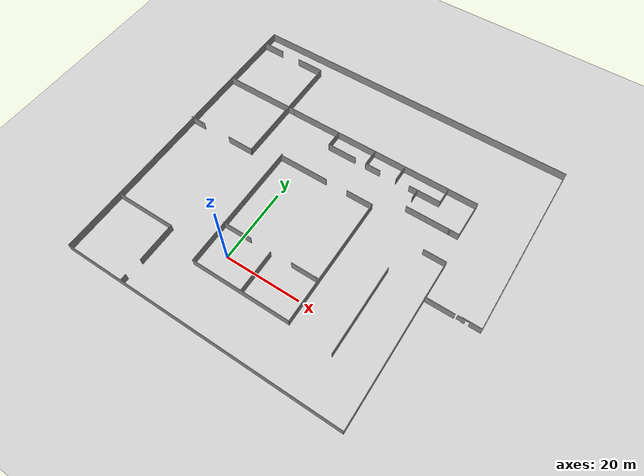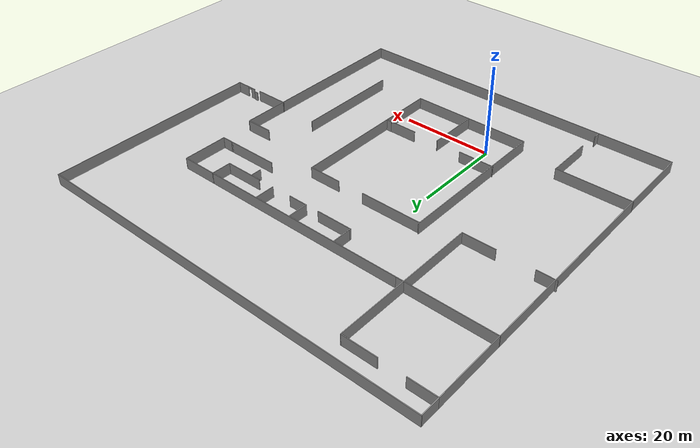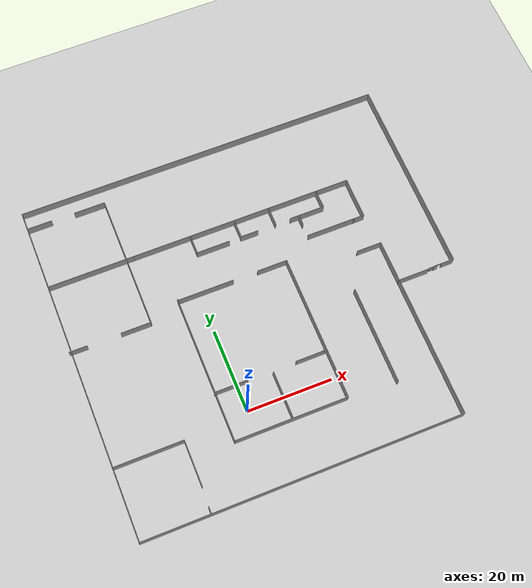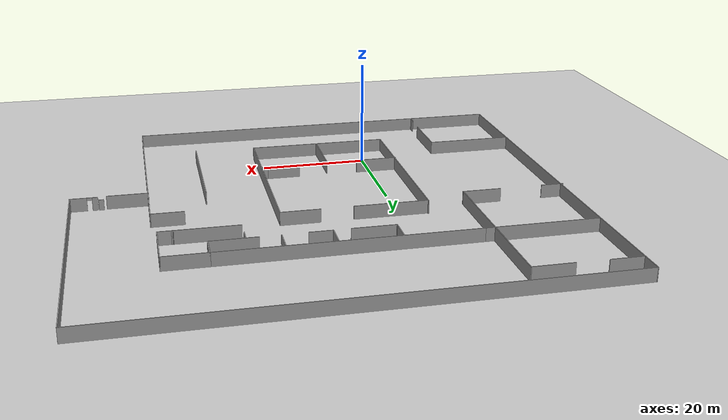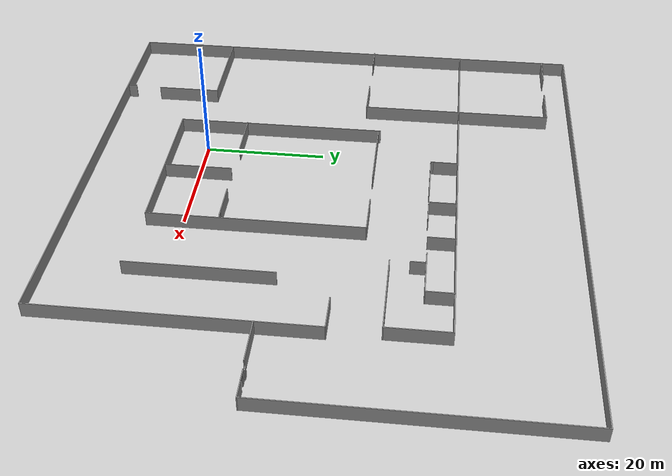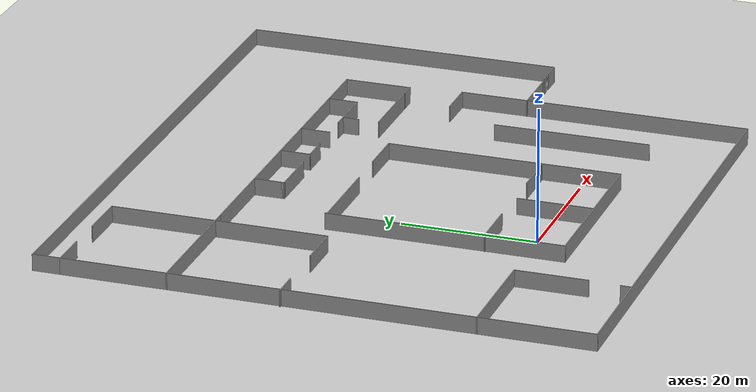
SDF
<sdf version="1.6">
 <world name="default">
  <light name="sun" type="directional">
   <pose>0 0 10 0 -0 0</pose>
   <diffuse>0.8 0.8 0.8 1</diffuse>
   <specular>0.2 0.2 0.2 1</specular>
   <attenuation>
    <range>1000</range>
    <constant>0.9</constant>
    <linear>0.01</linear>
    <quadratic>0.001</quadratic>
   </attenuation>
   <direction>-0.5 0.1 -0.9</direction>
  </light>
  <model name="ground_plane">
   <static>1</static>
   <link name="link">
    <collision name="collision">
     <geometry><plane><normal>0 0 1</normal><size>100 100</size></plane></geometry>
     <surface><friction><ode><mu>100</mu><mu2>50</mu2></ode></friction></surface>
    </collision>
    <visual name="visual">
     <cast_shadows>0</cast_shadows>
     <geometry><plane><normal>0 0 1</normal><size>100 100</size></plane></geometry>
     <material>
      <script><uri>file://media/materials/scripts/gazebo.material</uri><name>Gazebo/Grey</name></script>
     </material>
    </visual>
   </link>
  </model>
  <gravity>0 0 -9.8</gravity>
  <magnetic_field>6e-06 2.3e-05 -4.2e-05</magnetic_field>
  <atmosphere type="adiabatic"/>
  <physics name="default_physics" default="0" type="ode">
   <max_step_size>0.001</max_step_size>
   <real_time_factor>1</real_time_factor>
   <real_time_update_rate>1000</real_time_update_rate>
  </physics>
  <scene><ambient>0.4 0.4 0.4 1</ambient><background>0.7 0.7 0.7 1</background><shadows>1</shadows></scene>
  <spherical_coordinates>
   <surface_model>EARTH_WGS84</surface_model>
   <latitude_deg>0</latitude_deg>
   <longitude_deg>0</longitude_deg>
   <elevation>0</elevation>
   <heading_deg>0</heading_deg>
  </spherical_coordinates>
  <model name="factory">
   <pose>12.5619 22.2595 0 0 -0 0</pose>
   <link name="Door_1">
    <collision name="Door_1_Collision">
     <geometry><box><size>0.9 0.17 2</size></box></geometry>
     <pose>0 0 1 0 -0 0</pose>
    </collision>
    <visual name="Door_1_Visual">
     <pose>0 0 1 0 -0 0</pose>
     <geometry><box><size>0.9 0.17 2</size></box></geometry>
     <material>
      <script><uri>file://media/materials/scripts/gazebo.material</uri><name>Gazebo/Grey</name></script>
     </material>
    </visual>
    <pose>39.0036 -6.7146 0 0 -0 0</pose>
   </link>
   <link name="Wall_115">
    <collision name="Wall_115_Collision">
     <geometry><box><size>11.25 0.15 2.5</size></box></geometry>
     <pose>0 0 1.25 0 -0 0</pose>
    </collision>
    <visual name="Wall_115_Visual">
     <pose>0 0 1.25 0 -0 0</pose>
     <geometry><box><size>11.25 0.15 2.5</size></box></geometry>
     <material>
      <script><uri>file://media/materials/scripts/gazebo.material</uri><name>Gazebo/Grey</name></script>
      <ambient>1 1 1 1</ambient>
     </material>
     <meta><layer>0</layer></meta>
    </visual>
    <pose>-4.18518 -22.1969 0 0 -0 1.5708</pose>
   </link>
   <link name="Wall_117">
    <collision name="Wall_117_Collision">
     <geometry><box><size>1.25 0.15 2.5</size></box></geometry>
     <pose>0 0 1.25 0 -0 0</pose>
    </collision>
    <visual name="Wall_117_Visual">
     <pose>0 0 1.25 0 -0 0</pose>
     <geometry><box><size>1.25 0.15 2.5</size></box></geometry>
     <material>
      <script><uri>file://media/materials/scripts/gazebo.material</uri><name>Gazebo/Grey</name></script>
      <ambient>1 1 1 1</ambient>
     </material>
     <meta><layer>0</layer></meta>
    </visual>
    <pose>8.17817 -16.1796 0 0 -0 0</pose>
   </link>
   <link name="Wall_119">
    <collision name="Wall_119_Collision">
     <geometry><box><size>23.5 0.15 2.5</size></box></geometry>
     <pose>0 0 1.25 0 -0 0</pose>
    </collision>
    <visual name="Wall_119_Visual">
     <pose>0 0 1.25 0 -0 0</pose>
     <geometry><box><size>23.5 0.15 2.5</size></box></geometry>
     <material>
      <script><uri>file://media/materials/scripts/gazebo.material</uri><name>Gazebo/Grey</name></script>
      <ambient>1 1 1 1</ambient>
     </material>
     <meta><layer>0</layer></meta>
    </visual>
    <pose>20.426 -17.0257 0 0 -0 -1.5708</pose>
   </link>
   <link name="Wall_121">
    <collision name="Wall_121_Collision">
     <geometry><box><size>1.5 0.15 2.5</size></box></geometry>
     <pose>0 0 1.25 0 -0 0</pose>
    </collision>
    <visual name="Wall_121_Visual">
     <pose>0 0 1.25 0 -0 0</pose>
     <geometry><box><size>1.5 0.15 2.5</size></box></geometry>
     <material>
      <script><uri>file://media/materials/scripts/gazebo.material</uri><name>Gazebo/Grey</name></script>
      <ambient>1 1 1 1</ambient>
     </material>
     <meta><layer>0</layer></meta>
    </visual>
    <pose>-28.058 -39.6236 0 0 -0 1.5708</pose>
   </link>
   <link name="Wall_124">
    <collision name="Wall_124_Collision">
     <geometry><box><size>32.25 0.15 2.5</size></box></geometry>
     <pose>0 0 1.25 0 -0 0</pose>
    </collision>
    <visual name="Wall_124_Visual">
     <pose>0 0 1.25 0 -0 0</pose>
     <geometry><box><size>32.25 0.15 2.5</size></box></geometry>
     <material>
      <script><uri>file://media/materials/scripts/gazebo.material</uri><name>Gazebo/Grey</name></script>
      <ambient>1 1 1 1</ambient>
     </material>
     <meta><layer>0</layer></meta>
    </visual>
    <pose>-25.2313 20.2843 0 0 -0 -1.5708</pose>
   </link>
   <link name="Wall_125">
    <collision name="Wall_125_Collision">
     <geometry><box><size>7.25 0.15 2.5</size></box></geometry>
     <pose>0 0 1.25 0 -0 0</pose>
    </collision>
    <visual name="Wall_125_Visual">
     <pose>0 0 1.25 0 -0 0</pose>
     <geometry><box><size>7.25 0.15 2.5</size></box></geometry>
     <material>
      <script><uri>file://media/materials/scripts/gazebo.material</uri><name>Gazebo/Grey</name></script>
      <ambient>1 1 1 1</ambient>
     </material>
     <meta><layer>0</layer></meta>
    </visual>
    <pose>-28.7813 4.23431 0 0 -0 3.14159</pose>
   </link>
   <link name="Wall_127">
    <collision name="Wall_127_Collision">
     <geometry><box><size>4.25 0.15 2.5</size></box></geometry>
     <pose>0 0 1.25 0 -0 0</pose>
    </collision>
    <visual name="Wall_127_Visual">
     <pose>0 0 1.25 0 -0 0</pose>
     <geometry><box><size>4.25 0.15 2.5</size></box></geometry>
     <material>
      <script><uri>file://media/materials/scripts/gazebo.material</uri><name>Gazebo/Grey</name></script>
      <ambient>1 1 1 1</ambient>
     </material>
     <meta><layer>0</layer></meta>
    </visual>
    <pose>-42.4422 4.23281 0 0 -0 0</pose>
   </link>
   <link name="Wall_131">
    <collision name="Wall_131_Collision">
     <geometry><box><size>15.75 0.15 2.5</size></box></geometry>
     <pose>0 0 1.25 0 -0 0</pose>
    </collision>
    <visual name="Wall_131_Visual">
     <pose>0 0 1.25 0 -0 0</pose>
     <geometry><box><size>15.75 0.15 2.5</size></box></geometry>
     <material>
      <script><uri>file://media/materials/scripts/gazebo.material</uri><name>Gazebo/Grey</name></script>
      <ambient>1 1 1 1</ambient>
     </material>
     <meta><layer>0</layer></meta>
    </visual>
    <pose>-44.1078 28.625 0 0 -0 1.5708</pose>
   </link>
   <link name="Wall_132">
    <collision name="Wall_132_Collision">
     <geometry><box><size>6 0.15 2.5</size></box></geometry>
     <pose>0 0 1.25 0 -0 0</pose>
    </collision>
    <visual name="Wall_132_Visual">
     <pose>0 0 1.25 0 -0 0</pose>
     <geometry><box><size>6 0.15 2.5</size></box></geometry>
     <material>
      <script><uri>file://media/materials/scripts/gazebo.material</uri><name>Gazebo/Grey</name></script>
      <ambient>1 1 1 1</ambient>
     </material>
     <meta><layer>0</layer></meta>
    </visual>
    <pose>-41.1828 36.425 0 0 -0 0</pose>
   </link>
   <link name="Wall_134">
    <collision name="Wall_134_Collision">
     <geometry><box><size>7.5 0.15 2.5</size></box></geometry>
     <pose>0 0 1.25 0 -0 0</pose>
    </collision>
    <visual name="Wall_134_Visual">
     <pose>0 0 1.25 0 -0 0</pose>
     <geometry><box><size>7.5 0.15 2.5</size></box></geometry>
     <material>
      <script><uri>file://media/materials/scripts/gazebo.material</uri><name>Gazebo/Grey</name></script>
      <ambient>1 1 1 1</ambient>
     </material>
     <meta><layer>0</layer></meta>
    </visual>
    <pose>-28.9063 36.3343 0 0 -0 3.14159</pose>
   </link>
   <link name="Wall_136">
    <collision name="Wall_136_Collision">
     <geometry><box><size>4.25 0.15 2.5</size></box></geometry>
     <pose>0 0 1.25 0 -0 0</pose>
    </collision>
    <visual name="Wall_136_Visual">
     <pose>0 0 1.25 0 -0 0</pose>
     <geometry><box><size>4.25 0.15 2.5</size></box></geometry>
     <material>
      <script><uri>file://media/materials/scripts/gazebo.material</uri><name>Gazebo/Grey</name></script>
      <ambient>1 1 1 1</ambient>
     </material>
     <meta><layer>0</layer></meta>
    </visual>
    <pose>-44.1078 38.475 0 0 -0 1.5708</pose>
   </link>
   <link name="Wall_137">
    <collision name="Wall_137_Collision">
     <geometry><box><size>88.75 0.15 2.5</size></box></geometry>
     <pose>0 0 1.25 0 -0 0</pose>
    </collision>
    <visual name="Wall_137_Visual">
     <pose>0 0 1.25 0 -0 0</pose>
     <geometry><box><size>88.75 0.15 2.5</size></box></geometry>
     <material>
      <script><uri>file://media/materials/scripts/gazebo.material</uri><name>Gazebo/Grey</name></script>
      <ambient>1 1 1 1</ambient>
     </material>
     <meta><layer>0</layer></meta>
    </visual>
    <pose>0.192186 40.525 0 0 -0 0</pose>
   </link>
   <link name="Wall_138">
    <collision name="Wall_138_Collision">
     <geometry><box><size>47.5 0.15 2.5</size></box></geometry>
     <pose>0 0 1.25 0 -0 0</pose>
    </collision>
    <visual name="Wall_138_Visual">
     <pose>0 0 1.25 0 -0 0</pose>
     <geometry><box><size>47.5 0.15 2.5</size></box></geometry>
     <material>
      <script><uri>file://media/materials/scripts/gazebo.material</uri><name>Gazebo/Grey</name></script>
      <ambient>1 1 1 1</ambient>
     </material>
     <meta><layer>0</layer></meta>
    </visual>
    <pose>44.4922 16.85 0 0 -0 -1.5708</pose>
   </link>
   <link name="Wall_139">
    <pose>42.0672 -6.825 0 0 -0 3.14159</pose>
    <visual name="Wall_139_Visual_0">
     <pose>-0.960975 0 1.25 0 -0 0</pose>
     <geometry><box><size>3.07805 0.15 2.5</size></box></geometry>
     <material>
      <script><uri>file://media/materials/scripts/gazebo.material</uri><name>Gazebo/Grey</name></script>
      <ambient>1 1 1 1</ambient>
     </material>
     <meta><layer>0</layer></meta>
    </visual>
    <collision name="Wall_139_Collision_0">
     <geometry><box><size>3.07805 0.15 2.5</size></box></geometry>
     <pose>-0.960975 0 1.25 0 -0 0</pose>
    </collision>
    <visual name="Wall_139_Visual_1">
     <pose>1.98903 0 1.25 0 -0 0</pose>
     <geometry><box><size>1.02195 0.15 2.5</size></box></geometry>
     <material>
      <script><uri>file://media/materials/scripts/gazebo.material</uri><name>Gazebo/Grey</name></script>
      <ambient>1 1 1 1</ambient>
     </material>
     <meta><layer>0</layer></meta>
    </visual>
    <collision name="Wall_139_Collision_1">
     <geometry><box><size>1.02195 0.15 2.5</size></box></geometry>
     <pose>1.98903 0 1.25 0 -0 0</pose>
    </collision>
    <visual name="Wall_139_Visual_2">
     <pose>1.02805 0 2.25 0 -0 0</pose>
     <geometry><box><size>0.9 0.15 0.5</size></box></geometry>
     <material>
      <script><uri>file://media/materials/scripts/gazebo.material</uri><name>Gazebo/Grey</name></script>
      <ambient>1 1 1 1</ambient>
     </material>
     <meta><layer>0</layer></meta>
    </visual>
    <collision name="Wall_139_Collision_2">
     <geometry><box><size>0.9 0.15 0.5</size></box></geometry>
     <pose>1.02805 0 2.25 0 -0 0</pose>
    </collision>
   </link>
   <link name="Wall_141">
    <collision name="Wall_141_Collision">
     <geometry><box><size>7.5 0.15 2.5</size></box></geometry>
     <pose>0 0 1.25 0 -0 0</pose>
    </collision>
    <visual name="Wall_141_Visual">
     <pose>0 0 1.25 0 -0 0</pose>
     <geometry><box><size>7.5 0.15 2.5</size></box></geometry>
     <material>
      <script><uri>file://media/materials/scripts/gazebo.material</uri><name>Gazebo/Grey</name></script>
      <ambient>1 1 1 1</ambient>
     </material>
     <meta><layer>0</layer></meta>
    </visual>
    <pose>34.3559 -6.98725 0 0 -0 3.14159</pose>
   </link>
   <link name="Wall_28">
    <collision name="Wall_28_Collision">
     <geometry><box><size>8 0.15 2.5</size></box></geometry>
     <pose>0 0 1.25 0 -0 0</pose>
    </collision>
    <visual name="Wall_28_Visual">
     <pose>0 0 1.25 0 -0 0</pose>
     <geometry><box><size>8 0.15 2.5</size></box></geometry>
     <material>
      <script><uri>file://media/materials/scripts/gazebo.material</uri><name>Gazebo/Grey</name></script>
      <ambient>1 1 1 1</ambient>
     </material>
     <meta><layer>0</layer></meta>
    </visual>
    <pose>26.0172 20.825 0 0 -0 0</pose>
   </link>
   <link name="Wall_29">
    <collision name="Wall_29_Collision">
     <geometry><box><size>10 0.15 2.5</size></box></geometry>
     <pose>0 0 1.25 0 -0 0</pose>
    </collision>
    <visual name="Wall_29_Visual">
     <pose>0 0 1.25 0 -0 0</pose>
     <geometry><box><size>10 0.15 2.5</size></box></geometry>
     <material>
      <script><uri>file://media/materials/scripts/gazebo.material</uri><name>Gazebo/Grey</name></script>
      <ambient>1 1 1 1</ambient>
     </material>
     <meta><layer>0</layer></meta>
    </visual>
    <pose>29.9422 15.9 0 0 -0 -1.5708</pose>
   </link>
   <link name="Wall_30">
    <collision name="Wall_30_Collision">
     <geometry><box><size>2.5 0.15 2.5</size></box></geometry>
     <pose>0 0 1.25 0 -0 0</pose>
    </collision>
    <visual name="Wall_30_Visual">
     <pose>0 0 1.25 0 -0 0</pose>
     <geometry><box><size>2.5 0.15 2.5</size></box></geometry>
     <material>
      <script><uri>file://media/materials/scripts/gazebo.material</uri><name>Gazebo/Grey</name></script>
      <ambient>1 1 1 1</ambient>
     </material>
     <meta><layer>0</layer></meta>
    </visual>
    <pose>28.7672 10.975 0 0 -0 3.14159</pose>
   </link>
   <link name="Wall_33">
    <collision name="Wall_33_Collision">
     <geometry><box><size>4.5 0.15 2.5</size></box></geometry>
     <pose>0 0 1.25 0 -0 0</pose>
    </collision>
    <visual name="Wall_33_Visual">
     <pose>0 0 1.25 0 -0 0</pose>
     <geometry><box><size>4.5 0.15 2.5</size></box></geometry>
     <material>
      <script><uri>file://media/materials/scripts/gazebo.material</uri><name>Gazebo/Grey</name></script>
      <ambient>1 1 1 1</ambient>
     </material>
     <meta><layer>0</layer></meta>
    </visual>
    <pose>22.0922 18.65 0 0 -0 -1.5708</pose>
   </link>
   <link name="Wall_36">
    <collision name="Wall_36_Collision">
     <geometry><box><size>45.75 0.15 2.5</size></box></geometry>
     <pose>0 0 1.25 0 -0 0</pose>
    </collision>
    <visual name="Wall_36_Visual">
     <pose>0 0 1.25 0 -0 0</pose>
     <geometry><box><size>45.75 0.15 2.5</size></box></geometry>
     <material>
      <script><uri>file://media/materials/scripts/gazebo.material</uri><name>Gazebo/Grey</name></script>
      <ambient>1 1 1 1</ambient>
     </material>
     <meta><layer>0</layer></meta>
    </visual>
    <pose>-0.707813 20.825 0 0 -0 3.14159</pose>
   </link>
   <link name="Wall_37">
    <collision name="Wall_37_Collision">
     <geometry><box><size>20.75 0.15 2.5</size></box></geometry>
     <pose>0 0 1.25 0 -0 0</pose>
    </collision>
    <visual name="Wall_37_Visual">
     <pose>0 0 1.25 0 -0 0</pose>
     <geometry><box><size>20.75 0.15 2.5</size></box></geometry>
     <material>
      <script><uri>file://media/materials/scripts/gazebo.material</uri><name>Gazebo/Grey</name></script>
      <ambient>1 1 1 1</ambient>
     </material>
     <meta><layer>0</layer></meta>
    </visual>
    <pose>-33.8078 20.825 0 0 -0 3.14159</pose>
   </link>
   <link name="Wall_38">
    <collision name="Wall_38_Collision">
     <geometry><box><size>61.5 0.15 2.5</size></box></geometry>
     <pose>0 0 1.25 0 -0 0</pose>
    </collision>
    <visual name="Wall_38_Visual">
     <pose>0 0 1.25 0 -0 0</pose>
     <geometry><box><size>61.5 0.15 2.5</size></box></geometry>
     <material>
      <script><uri>file://media/materials/scripts/gazebo.material</uri><name>Gazebo/Grey</name></script>
      <ambient>1 1 1 1</ambient>
     </material>
     <meta><layer>0</layer></meta>
    </visual>
    <pose>-44.1078 -9.85 0 0 -0 -1.5708</pose>
   </link>
   <link name="Wall_39">
    <collision name="Wall_39_Collision">
     <geometry><box><size>75 0.15 2.5</size></box></geometry>
     <pose>0 0 1.25 0 -0 0</pose>
    </collision>
    <visual name="Wall_39_Visual">
     <pose>0 0 1.25 0 -0 0</pose>
     <geometry><box><size>75 0.15 2.5</size></box></geometry>
     <material>
      <script><uri>file://media/materials/scripts/gazebo.material</uri><name>Gazebo/Grey</name></script>
      <ambient>1 1 1 1</ambient>
     </material>
     <meta><layer>0</layer></meta>
    </visual>
    <pose>-6.68281 -40.525 0 0 -0 0</pose>
   </link>
   <link name="Wall_40">
    <collision name="Wall_40_Collision">
     <geometry><box><size>43.75 0.15 2.5</size></box></geometry>
     <pose>0 0 1.25 0 -0 0</pose>
    </collision>
    <visual name="Wall_40_Visual">
     <pose>0 0 1.25 0 -0 0</pose>
     <geometry><box><size>43.75 0.15 2.5</size></box></geometry>
     <material>
      <script><uri>file://media/materials/scripts/gazebo.material</uri><name>Gazebo/Grey</name></script>
      <ambient>1 1 1 1</ambient>
     </material>
     <meta><layer>0</layer></meta>
    </visual>
    <pose>30.7422 -18.725 0 0 -0 1.5708</pose>
   </link>
   <link name="Wall_41">
    <collision name="Wall_41_Collision">
     <geometry><box><size>6 0.15 2.5</size></box></geometry>
     <pose>0 0 1.25 0 -0 0</pose>
    </collision>
    <visual name="Wall_41_Visual">
     <pose>0 0 1.25 0 -0 0</pose>
     <geometry><box><size>6 0.15 2.5</size></box></geometry>
     <material>
      <script><uri>file://media/materials/scripts/gazebo.material</uri><name>Gazebo/Grey</name></script>
      <ambient>1 1 1 1</ambient>
     </material>
     <meta><layer>0</layer></meta>
    </visual>
    <pose>27.8172 3.075 0 0 -0 3.14159</pose>
   </link>
   <link name="Wall_43">
    <collision name="Wall_43_Collision">
     <geometry><box><size>8.5 0.15 2.5</size></box></geometry>
     <pose>0 0 1.25 0 -0 0</pose>
    </collision>
    <visual name="Wall_43_Visual">
     <pose>0 0 1.25 0 -0 0</pose>
     <geometry><box><size>8.5 0.15 2.5</size></box></geometry>
     <material>
      <script><uri>file://media/materials/scripts/gazebo.material</uri><name>Gazebo/Grey</name></script>
      <ambient>1 1 1 1</ambient>
     </material>
     <meta><layer>0</layer></meta>
    </visual>
    <pose>17.9172 16.475 0 0 -0 3.14159</pose>
   </link>
   <link name="Wall_46">
    <collision name="Wall_46_Collision">
     <geometry><box><size>11.5 0.15 2.5</size></box></geometry>
     <pose>0 0 1.25 0 -0 0</pose>
    </collision>
    <visual name="Wall_46_Visual">
     <pose>0 0 1.25 0 -0 0</pose>
     <geometry><box><size>11.5 0.15 2.5</size></box></geometry>
     <material>
      <script><uri>file://media/materials/scripts/gazebo.material</uri><name>Gazebo/Grey</name></script>
      <ambient>1 1 1 1</ambient>
     </material>
     <meta><layer>0</layer></meta>
    </visual>
    <pose>21.6221 10.9804 0 0 -0 3.14159</pose>
   </link>
   <link name="Wall_50">
    <collision name="Wall_50_Collision">
     <geometry><box><size>0.445165 0.15 2.5</size></box></geometry>
     <pose>0 0 1.25 0 -0 0</pose>
    </collision>
    <visual name="Wall_50_Visual">
     <pose>0 0 1.25 0 -0 0</pose>
     <geometry><box><size>0.445165 0.15 2.5</size></box></geometry>
     <material>
      <script><uri>file://media/materials/scripts/gazebo.material</uri><name>Gazebo/Grey</name></script>
      <ambient>1 1 1 1</ambient>
     </material>
     <meta><layer>0</layer></meta>
    </visual>
    <pose>27.4446 10.9777 0 0 -0 -0.018359</pose>
   </link>
   <link name="Wall_52">
    <collision name="Wall_52_Collision">
     <geometry><box><size>2.5 0.15 2.5</size></box></geometry>
     <pose>0 0 1.25 0 -0 0</pose>
    </collision>
    <visual name="Wall_52_Visual">
     <pose>0 0 1.25 0 -0 0</pose>
     <geometry><box><size>2.5 0.15 2.5</size></box></geometry>
     <material>
      <script><uri>file://media/materials/scripts/gazebo.material</uri><name>Gazebo/Grey</name></script>
      <ambient>1 1 1 1</ambient>
     </material>
     <meta><layer>0</layer></meta>
    </visual>
    <pose>15.8921 15.2787 0 0 -0 -1.5708</pose>
   </link>
   <link name="Wall_55">
    <collision name="Wall_55_Collision">
     <geometry><box><size>4.5 0.15 2.5</size></box></geometry>
     <pose>0 0 1.25 0 -0 0</pose>
    </collision>
    <visual name="Wall_55_Visual">
     <pose>0 0 1.25 0 -0 0</pose>
     <geometry><box><size>4.5 0.15 2.5</size></box></geometry>
     <material>
      <script><uri>file://media/materials/scripts/gazebo.material</uri><name>Gazebo/Grey</name></script>
      <ambient>1 1 1 1</ambient>
     </material>
     <meta><layer>0</layer></meta>
    </visual>
    <pose>10.0107 18.6413 0 0 -0 -1.5708</pose>
   </link>
   <link name="Wall_59">
    <collision name="Wall_59_Collision">
     <geometry><box><size>4.5 0.15 2.5</size></box></geometry>
     <pose>0 0 1.25 0 -0 0</pose>
    </collision>
    <visual name="Wall_59_Visual">
     <pose>0 0 1.25 0 -0 0</pose>
     <geometry><box><size>4.5 0.15 2.5</size></box></geometry>
     <material>
      <script><uri>file://media/materials/scripts/gazebo.material</uri><name>Gazebo/Grey</name></script>
      <ambient>1 1 1 1</ambient>
     </material>
     <meta><layer>0</layer></meta>
    </visual>
    <pose>1.35223 18.5395 0 0 -0 -1.5708</pose>
   </link>
   <link name="Wall_60">
    <collision name="Wall_60_Collision">
     <geometry><box><size>4.25 0.15 2.5</size></box></geometry>
     <pose>0 0 1.25 0 -0 0</pose>
    </collision>
    <visual name="Wall_60_Visual">
     <pose>0 0 1.25 0 -0 0</pose>
     <geometry><box><size>4.25 0.15 2.5</size></box></geometry>
     <material>
      <script><uri>file://media/materials/scripts/gazebo.material</uri><name>Gazebo/Grey</name></script>
      <ambient>1 1 1 1</ambient>
     </material>
     <meta><layer>0</layer></meta>
    </visual>
    <pose>3.40223 16.3645 0 0 -0 0</pose>
   </link>
   <link name="Wall_62">
    <collision name="Wall_62_Collision">
     <geometry><box><size>4.25 0.15 2.5</size></box></geometry>
     <pose>0 0 1.25 0 -0 0</pose>
    </collision>
    <visual name="Wall_62_Visual">
     <pose>0 0 1.25 0 -0 0</pose>
     <geometry><box><size>4.25 0.15 2.5</size></box></geometry>
     <material>
      <script><uri>file://media/materials/scripts/gazebo.material</uri><name>Gazebo/Grey</name></script>
      <ambient>1 1 1 1</ambient>
     </material>
     <meta><layer>0</layer></meta>
    </visual>
    <pose>-9.55385 18.7177 0 0 -0 -1.5708</pose>
   </link>
   <link name="Wall_63">
    <collision name="Wall_63_Collision">
     <geometry><box><size>0.5 0.15 2.5</size></box></geometry>
     <pose>0 0 1.25 0 -0 0</pose>
    </collision>
    <visual name="Wall_63_Visual">
     <pose>0 0 1.25 0 -0 0</pose>
     <geometry><box><size>0.5 0.15 2.5</size></box></geometry>
     <material>
      <script><uri>file://media/materials/scripts/gazebo.material</uri><name>Gazebo/Grey</name></script>
      <ambient>1 1 1 1</ambient>
     </material>
     <meta><layer>0</layer></meta>
    </visual>
    <pose>-9.55385 16.4927 0 0 -0 -1.5708</pose>
   </link>
   <link name="Wall_64">
    <collision name="Wall_64_Collision">
     <geometry><box><size>8 0.15 2.5</size></box></geometry>
     <pose>0 0 1.25 0 -0 0</pose>
    </collision>
    <visual name="Wall_64_Visual">
     <pose>0 0 1.25 0 -0 0</pose>
     <geometry><box><size>8 0.15 2.5</size></box></geometry>
     <material>
      <script><uri>file://media/materials/scripts/gazebo.material</uri><name>Gazebo/Grey</name></script>
      <ambient>1 1 1 1</ambient>
     </material>
     <meta><layer>0</layer></meta>
    </visual>
    <pose>-5.62885 16.3177 0 0 -0 0</pose>
   </link>
   <link name="Wall_66">
    <collision name="Wall_66_Collision">
     <geometry><box><size>35.25 0.15 2.5</size></box></geometry>
     <pose>0 0 1.25 0 -0 0</pose>
    </collision>
    <visual name="Wall_66_Visual">
     <pose>0 0 1.25 0 -0 0</pose>
     <geometry><box><size>35.25 0.15 2.5</size></box></geometry>
     <material>
      <script><uri>file://media/materials/scripts/gazebo.material</uri><name>Gazebo/Grey</name></script>
      <ambient>1 1 1 1</ambient>
     </material>
     <meta><layer>0</layer></meta>
    </visual>
    <pose>-17.8047 -10.3221 0 0 -0 -1.5708</pose>
   </link>
   <link name="Wall_67">
    <collision name="Wall_67_Collision">
     <geometry><box><size>26.75 0.15 2.5</size></box></geometry>
     <pose>0 0 1.25 0 -0 0</pose>
    </collision>
    <visual name="Wall_67_Visual">
     <pose>0 0 1.25 0 -0 0</pose>
     <geometry><box><size>26.75 0.15 2.5</size></box></geometry>
     <material>
      <script><uri>file://media/materials/scripts/gazebo.material</uri><name>Gazebo/Grey</name></script>
      <ambient>1 1 1 1</ambient>
     </material>
     <meta><layer>0</layer></meta>
    </visual>
    <pose>-4.50473 -27.8721 0 0 -0 0</pose>
   </link>
   <link name="Wall_68">
    <collision name="Wall_68_Collision">
     <geometry><box><size>35 0.15 2.5</size></box></geometry>
     <pose>0 0 1.25 0 -0 0</pose>
    </collision>
    <visual name="Wall_68_Visual">
     <pose>0 0 1.25 0 -0 0</pose>
     <geometry><box><size>35 0.15 2.5</size></box></geometry>
     <material>
      <script><uri>file://media/materials/scripts/gazebo.material</uri><name>Gazebo/Grey</name></script>
      <ambient>1 1 1 1</ambient>
     </material>
     <meta><layer>0</layer></meta>
    </visual>
    <pose>8.79528 -10.4471 0 0 -0 1.5708</pose>
   </link>
   <link name="Wall_69">
    <collision name="Wall_69_Collision">
     <geometry><box><size>7.25 0.15 2.5</size></box></geometry>
     <pose>0 0 1.25 0 -0 0</pose>
    </collision>
    <visual name="Wall_69_Visual">
     <pose>0 0 1.25 0 -0 0</pose>
     <geometry><box><size>7.25 0.15 2.5</size></box></geometry>
     <material>
      <script><uri>file://media/materials/scripts/gazebo.material</uri><name>Gazebo/Grey</name></script>
      <ambient>1 1 1 1</ambient>
     </material>
     <meta><layer>0</layer></meta>
    </visual>
    <pose>5.24527 6.97793 0 0 -0 3.14159</pose>
   </link>
   <link name="Wall_71">
    <collision name="Wall_71_Collision">
     <geometry><box><size>13.5 0.15 2.5</size></box></geometry>
     <pose>0 0 1.25 0 -0 0</pose>
    </collision>
    <visual name="Wall_71_Visual">
     <pose>0 0 1.25 0 -0 0</pose>
     <geometry><box><size>13.5 0.15 2.5</size></box></geometry>
     <material>
      <script><uri>file://media/materials/scripts/gazebo.material</uri><name>Gazebo/Grey</name></script>
      <ambient>1 1 1 1</ambient>
     </material>
     <meta><layer>0</layer></meta>
    </visual>
    <pose>-11.0165 6.92099 0 0 -0 0</pose>
   </link>
   <link name="Wall_73">
    <collision name="Wall_73_Collision">
     <geometry><box><size>16.5 0.15 2.5</size></box></geometry>
     <pose>0 0 1.25 0 -0 0</pose>
    </collision>
    <visual name="Wall_73_Visual">
     <pose>0 0 1.25 0 -0 0</pose>
     <geometry><box><size>16.5 0.15 2.5</size></box></geometry>
     <material>
      <script><uri>file://media/materials/scripts/gazebo.material</uri><name>Gazebo/Grey</name></script>
      <ambient>1 1 1 1</ambient>
     </material>
     <meta><layer>0</layer></meta>
    </visual>
    <pose>-35.9666 -23.6897 0 0 -0 0</pose>
   </link>
   <link name="Wall_74">
    <collision name="Wall_74_Collision">
     <geometry><box><size>10.75 0.15 2.5</size></box></geometry>
     <pose>0 0 1.25 0 -0 0</pose>
    </collision>
    <visual name="Wall_74_Visual">
     <pose>0 0 1.25 0 -0 0</pose>
     <geometry><box><size>10.75 0.15 2.5</size></box></geometry>
     <material>
      <script><uri>file://media/materials/scripts/gazebo.material</uri><name>Gazebo/Grey</name></script>
      <ambient>1 1 1 1</ambient>
     </material>
     <meta><layer>0</layer></meta>
    </visual>
    <pose>-27.7916 -28.9897 0 0 -0 -1.5708</pose>
   </link>
   <link name="Wall_81">
    <collision name="Wall_81_Collision">
     <geometry><box><size>8 0.15 2.5</size></box></geometry>
     <pose>0 0 1.25 0 -0 0</pose>
    </collision>
    <visual name="Wall_81_Visual">
     <pose>0 0 1.25 0 -0 0</pose>
     <geometry><box><size>8 0.15 2.5</size></box></geometry>
     <material>
      <script><uri>file://media/materials/scripts/gazebo.material</uri><name>Gazebo/Grey</name></script>
      <ambient>1 1 1 1</ambient>
     </material>
     <meta><layer>0</layer></meta>
    </visual>
    <pose>-14.05 -16.235 0 0 -0 0</pose>
   </link>
   <link name="Wall_83">
    <collision name="Wall_83_Collision">
     <geometry><box><size>6.75 0.15 2.5</size></box></geometry>
     <pose>0 0 1.25 0 -0 0</pose>
    </collision>
    <visual name="Wall_83_Visual">
     <pose>0 0 1.25 0 -0 0</pose>
     <geometry><box><size>6.75 0.15 2.5</size></box></geometry>
     <material>
      <script><uri>file://media/materials/scripts/gazebo.material</uri><name>Gazebo/Grey</name></script>
      <ambient>1 1 1 1</ambient>
     </material>
     <meta><layer>0</layer></meta>
    </visual>
    <pose>4.73914 -16.235 0 0 -0 3.14159</pose>
   </link>
   <static>1</static>
  </model>
 </world>
</sdf>
